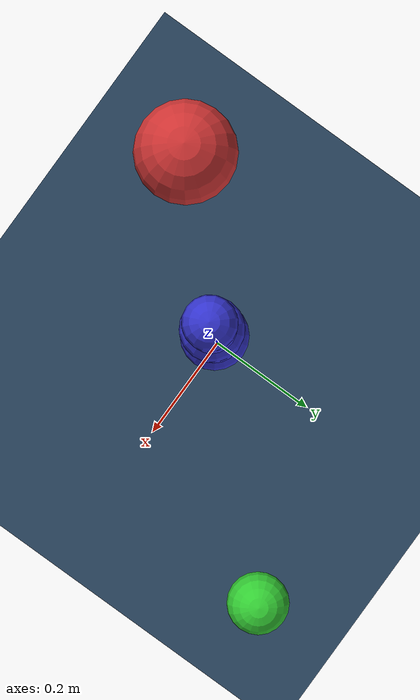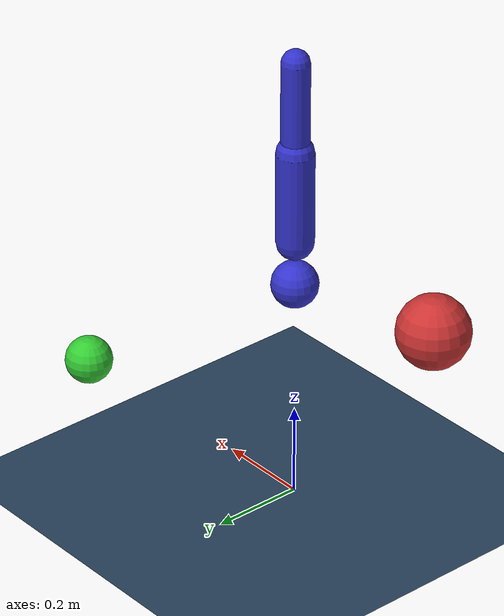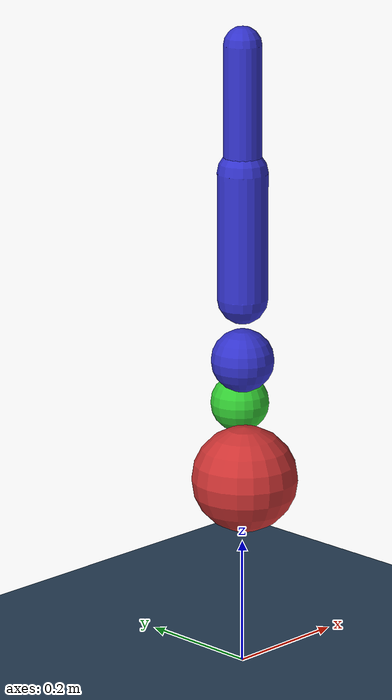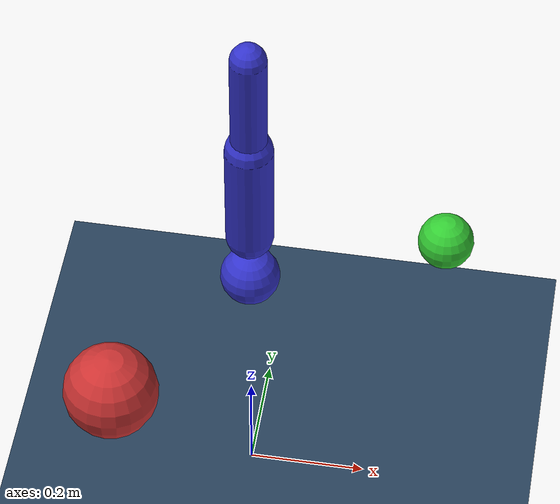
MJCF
<!-- Generated using Gemini with prompt - "Reach avoid task with mujoco" -->
<!-- Edited by Megnath Ramesh -->

<mujoco model="reach_avoid_task">
    <compiler angle="radian"/>
    <option timestep="0.005">
        <flag warmstart="enable"/>
    </option>

    <visual>
        <rgba contactforce="0.8 0.1 0.1 1"/>
        <map znear="0.01"/>
    </visual>

    <asset>
        <texture name="grid" type="2d" builtin="checker" rgb1="0.1 0.2 0.3" rgb2="0.2 0.3 0.4" width="300" height="300" mark="edge" markrgb="0.8 0.8 0.8"/>
        <material name="grid_mat" texture="grid" texrepeat="1 1" texuniform="true"/>
        <material name="blue_mat" rgba="0.2 0.2 0.8 1"/>
        <material name="red_mat" rgba="0.8 0.2 0.2 1"/>
        <material name="green_mat" rgba="0.2 0.8 0.2 1"/>
    </asset>

    <worldbody>
        <geom name="floor" type="plane" size="0 0 0.1" material="grid_mat"/>

        <body name="base" pos="0 0 0.5">
            <geom name="base_link" type="sphere" size="0.05" material="blue_mat"/>

            <body name="link1" pos="0 0 0.1">
                <joint name="joint1" type="hinge" axis="0 0 1" pos="0 0 0"/>
                <geom name="link1_geom" type="capsule" size="0.04" fromto="0 0 0 0 0 0.2" material="blue_mat"/>

                <body name="link2" pos="0 0 0.2">
                    <joint name="joint2" type="hinge" axis="0 1 0" pos="0 0 0"/>
                    <geom name="link2_geom" type="capsule" size="0.03" fromto="0 0 0 0 0 0.2" material="blue_mat"/>
                    <site name="end_effector" pos="0 0 0.2" size="0.01" type="sphere" rgba="1 1 0 1"/>
                </body>
            </body>
        </body>

        <body name="target" pos="0.3 0.3 0.3">
            <geom name="target_geom" type="sphere" size="0.05" material="green_mat" contype="0" conaffinity="0"/>
        </body>

        <body name="obstacle" pos="-0.2 -0.2 0.4">
            <geom name="obstacle_geom" type="sphere" size="0.08" material="red_mat" contype="1" conaffinity="1"/>
        </body>
    </worldbody>

    <actuator>
        <motor name="motor1" joint="joint1" gear="100"/>
        <motor name="motor2" joint="joint2" gear="100"/>
    </actuator>
</mujoco>
